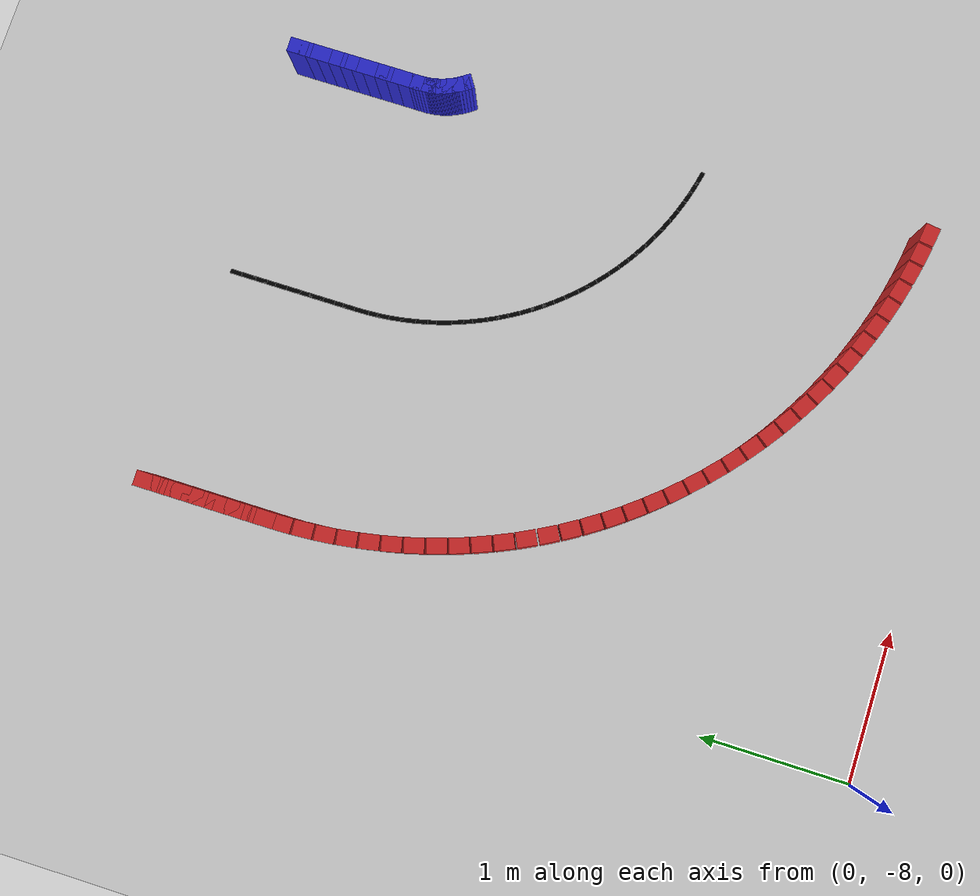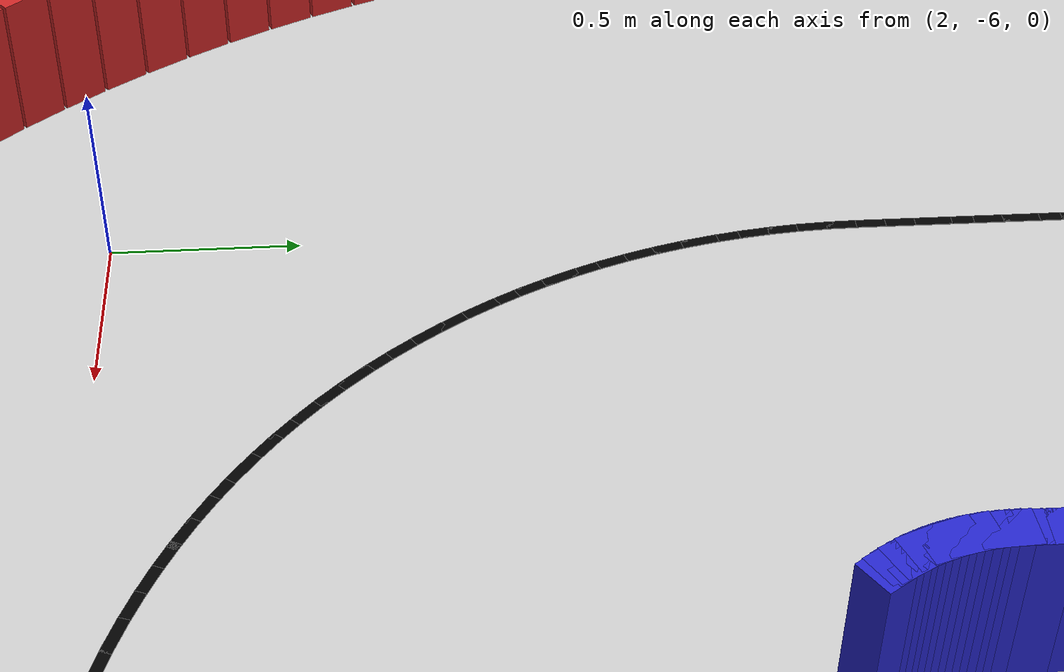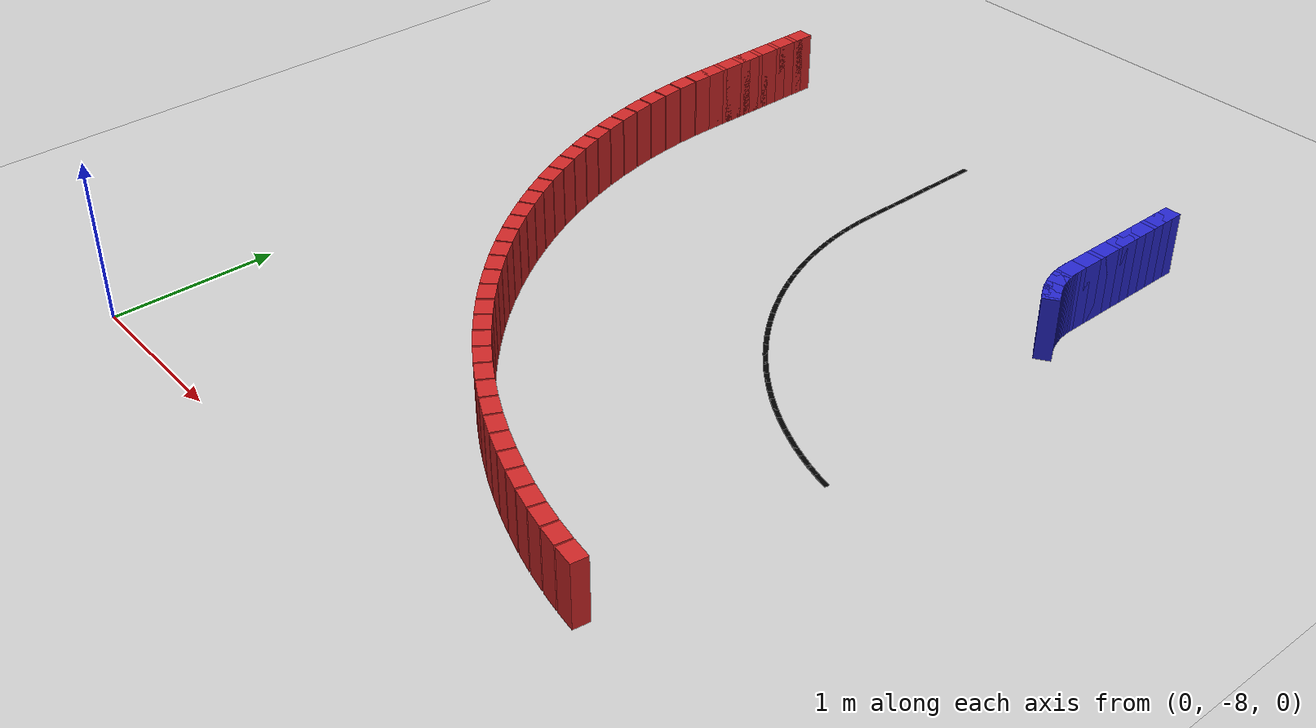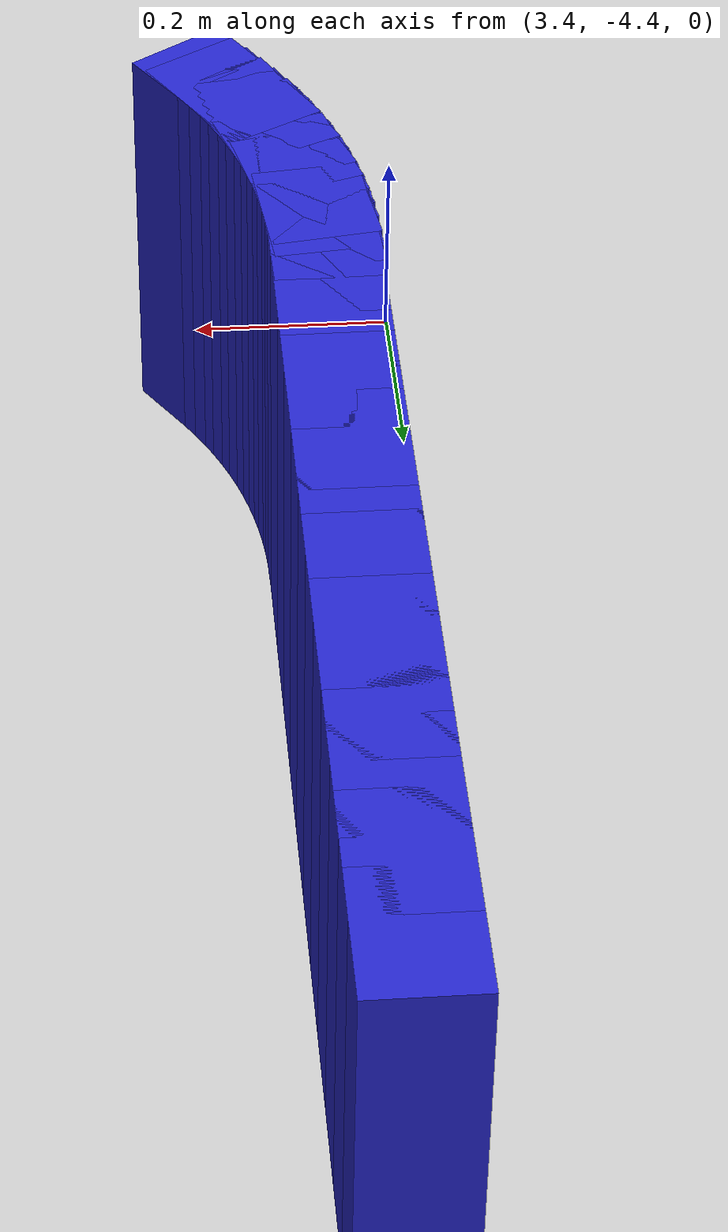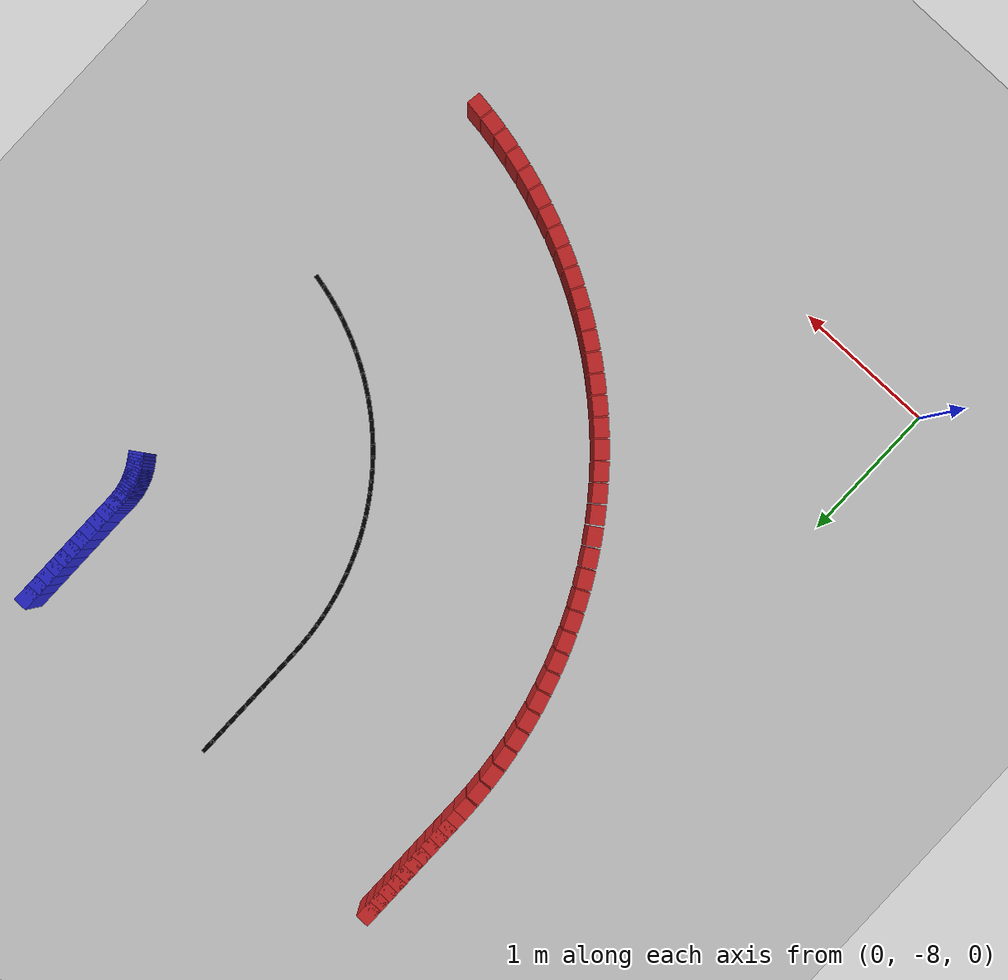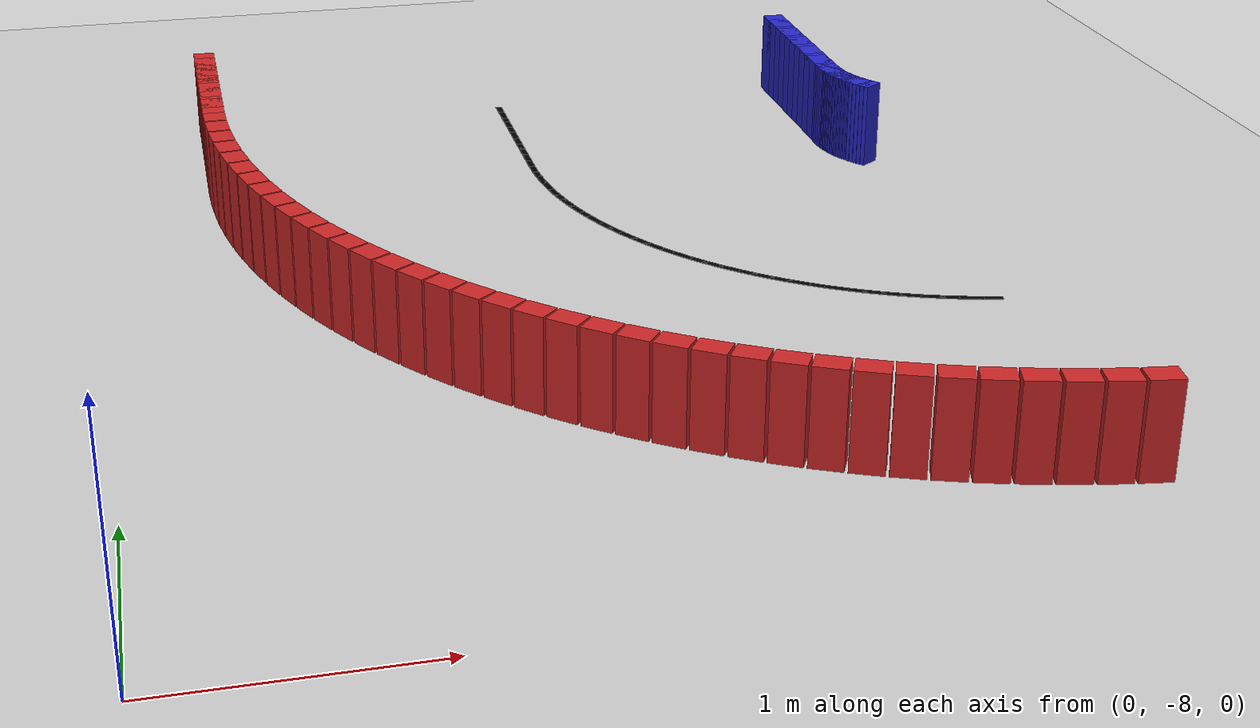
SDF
<sdf version="1.6">
 <world name="new_race_track">
  <include><uri>model://ground_plane</uri></include>
  <include><uri>model://sun</uri></include>
  <model name="iw_282">
   <static>true</static>
   <pose>3.5000 -3.1600 0.200 0 0 -1.5708</pose>
   <link name="l">
    <collision name="c"><geometry><box><size>0.1300 0.1 0.4</size></box></geometry></collision>
    <visual name="v">
     <geometry><box><size>0.1300 0.1 0.4</size></box></geometry>
     <material><ambient>0.15 0.15 0.8 1</ambient><diffuse>0.15 0.15 0.8 1</diffuse></material>
    </visual>
   </link>
  </model>
  <model name="iw_283">
   <static>true</static>
   <pose>3.5000 -3.2400 0.200 0 0 -1.5708</pose>
   <link name="l">
    <collision name="c"><geometry><box><size>0.1300 0.1 0.4</size></box></geometry></collision>
    <visual name="v">
     <geometry><box><size>0.1300 0.1 0.4</size></box></geometry>
     <material><ambient>0.15 0.15 0.8 1</ambient><diffuse>0.15 0.15 0.8 1</diffuse></material>
    </visual>
   </link>
  </model>
  <model name="iw_284">
   <static>true</static>
   <pose>3.5000 -3.3200 0.200 0 0 -1.5708</pose>
   <link name="l">
    <collision name="c"><geometry><box><size>0.1300 0.1 0.4</size></box></geometry></collision>
    <visual name="v">
     <geometry><box><size>0.1300 0.1 0.4</size></box></geometry>
     <material><ambient>0.15 0.15 0.8 1</ambient><diffuse>0.15 0.15 0.8 1</diffuse></material>
    </visual>
   </link>
  </model>
  <model name="iw_285">
   <static>true</static>
   <pose>3.5000 -3.4000 0.200 0 0 -1.5708</pose>
   <link name="l">
    <collision name="c"><geometry><box><size>0.1300 0.1 0.4</size></box></geometry></collision>
    <visual name="v">
     <geometry><box><size>0.1300 0.1 0.4</size></box></geometry>
     <material><ambient>0.15 0.15 0.8 1</ambient><diffuse>0.15 0.15 0.8 1</diffuse></material>
    </visual>
   </link>
  </model>
  <model name="iw_286">
   <static>true</static>
   <pose>3.5000 -3.4800 0.200 0 0 -1.5708</pose>
   <link name="l">
    <collision name="c"><geometry><box><size>0.1300 0.1 0.4</size></box></geometry></collision>
    <visual name="v">
     <geometry><box><size>0.1300 0.1 0.4</size></box></geometry>
     <material><ambient>0.15 0.15 0.8 1</ambient><diffuse>0.15 0.15 0.8 1</diffuse></material>
    </visual>
   </link>
  </model>
  <model name="iw_287">
   <static>true</static>
   <pose>3.5000 -3.5600 0.200 0 0 -1.5708</pose>
   <link name="l">
    <collision name="c"><geometry><box><size>0.1300 0.1 0.4</size></box></geometry></collision>
    <visual name="v">
     <geometry><box><size>0.1300 0.1 0.4</size></box></geometry>
     <material><ambient>0.15 0.15 0.8 1</ambient><diffuse>0.15 0.15 0.8 1</diffuse></material>
    </visual>
   </link>
  </model>
  <model name="iw_288">
   <static>true</static>
   <pose>3.5000 -3.6400 0.200 0 0 -1.5708</pose>
   <link name="l">
    <collision name="c"><geometry><box><size>0.1300 0.1 0.4</size></box></geometry></collision>
    <visual name="v">
     <geometry><box><size>0.1300 0.1 0.4</size></box></geometry>
     <material><ambient>0.15 0.15 0.8 1</ambient><diffuse>0.15 0.15 0.8 1</diffuse></material>
    </visual>
   </link>
  </model>
  <model name="iw_289">
   <static>true</static>
   <pose>3.5000 -3.7200 0.200 0 0 -1.5708</pose>
   <link name="l">
    <collision name="c"><geometry><box><size>0.1300 0.1 0.4</size></box></geometry></collision>
    <visual name="v">
     <geometry><box><size>0.1300 0.1 0.4</size></box></geometry>
     <material><ambient>0.15 0.15 0.8 1</ambient><diffuse>0.15 0.15 0.8 1</diffuse></material>
    </visual>
   </link>
  </model>
  <model name="iw_290">
   <static>true</static>
   <pose>3.5000 -3.8000 0.200 0 0 -1.5708</pose>
   <link name="l">
    <collision name="c"><geometry><box><size>0.1300 0.1 0.4</size></box></geometry></collision>
    <visual name="v">
     <geometry><box><size>0.1300 0.1 0.4</size></box></geometry>
     <material><ambient>0.15 0.15 0.8 1</ambient><diffuse>0.15 0.15 0.8 1</diffuse></material>
    </visual>
   </link>
  </model>
  <model name="iw_291">
   <static>true</static>
   <pose>3.5000 -3.8800 0.200 0 0 -1.5708</pose>
   <link name="l">
    <collision name="c"><geometry><box><size>0.1300 0.1 0.4</size></box></geometry></collision>
    <visual name="v">
     <geometry><box><size>0.1300 0.1 0.4</size></box></geometry>
     <material><ambient>0.15 0.15 0.8 1</ambient><diffuse>0.15 0.15 0.8 1</diffuse></material>
    </visual>
   </link>
  </model>
  <model name="iw_292">
   <static>true</static>
   <pose>3.5000 -3.9600 0.200 0 0 -1.5708</pose>
   <link name="l">
    <collision name="c"><geometry><box><size>0.1300 0.1 0.4</size></box></geometry></collision>
    <visual name="v">
     <geometry><box><size>0.1300 0.1 0.4</size></box></geometry>
     <material><ambient>0.15 0.15 0.8 1</ambient><diffuse>0.15 0.15 0.8 1</diffuse></material>
    </visual>
   </link>
  </model>
  <model name="iw_293">
   <static>true</static>
   <pose>3.5005 -4.0101 0.200 0 0 -1.5507</pose>
   <link name="l">
    <collision name="c"><geometry><box><size>0.1305 0.1 0.4</size></box></geometry></collision>
    <visual name="v">
     <geometry><box><size>0.1305 0.1 0.4</size></box></geometry>
     <material><ambient>0.15 0.15 0.8 1</ambient><diffuse>0.15 0.15 0.8 1</diffuse></material>
    </visual>
   </link>
  </model>
  <model name="iw_294">
   <static>true</static>
   <pose>3.5013 -4.0302 0.200 0 0 -1.5104</pose>
   <link name="l">
    <collision name="c"><geometry><box><size>0.1305 0.1 0.4</size></box></geometry></collision>
    <visual name="v">
     <geometry><box><size>0.1305 0.1 0.4</size></box></geometry>
     <material><ambient>0.15 0.15 0.8 1</ambient><diffuse>0.15 0.15 0.8 1</diffuse></material>
    </visual>
   </link>
  </model>
  <model name="iw_295">
   <static>true</static>
   <pose>3.5029 -4.0502 0.200 0 0 -1.4701</pose>
   <link name="l">
    <collision name="c"><geometry><box><size>0.1305 0.1 0.4</size></box></geometry></collision>
    <visual name="v">
     <geometry><box><size>0.1305 0.1 0.4</size></box></geometry>
     <material><ambient>0.15 0.15 0.8 1</ambient><diffuse>0.15 0.15 0.8 1</diffuse></material>
    </visual>
   </link>
  </model>
  <model name="iw_296">
   <static>true</static>
   <pose>3.5054 -4.0702 0.200 0 0 -1.4298</pose>
   <link name="l">
    <collision name="c"><geometry><box><size>0.1305 0.1 0.4</size></box></geometry></collision>
    <visual name="v">
     <geometry><box><size>0.1305 0.1 0.4</size></box></geometry>
     <material><ambient>0.15 0.15 0.8 1</ambient><diffuse>0.15 0.15 0.8 1</diffuse></material>
    </visual>
   </link>
  </model>
  <model name="iw_297">
   <static>true</static>
   <pose>3.5086 -4.0901 0.200 0 0 -1.3896</pose>
   <link name="l">
    <collision name="c"><geometry><box><size>0.1305 0.1 0.4</size></box></geometry></collision>
    <visual name="v">
     <geometry><box><size>0.1305 0.1 0.4</size></box></geometry>
     <material><ambient>0.15 0.15 0.8 1</ambient><diffuse>0.15 0.15 0.8 1</diffuse></material>
    </visual>
   </link>
  </model>
  <model name="iw_298">
   <static>true</static>
   <pose>3.5126 -4.1098 0.200 0 0 -1.3493</pose>
   <link name="l">
    <collision name="c"><geometry><box><size>0.1305 0.1 0.4</size></box></geometry></collision>
    <visual name="v">
     <geometry><box><size>0.1305 0.1 0.4</size></box></geometry>
     <material><ambient>0.15 0.15 0.8 1</ambient><diffuse>0.15 0.15 0.8 1</diffuse></material>
    </visual>
   </link>
  </model>
  <model name="iw_299">
   <static>true</static>
   <pose>3.5174 -4.1293 0.200 0 0 -1.3090</pose>
   <link name="l">
    <collision name="c"><geometry><box><size>0.1305 0.1 0.4</size></box></geometry></collision>
    <visual name="v">
     <geometry><box><size>0.1305 0.1 0.4</size></box></geometry>
     <material><ambient>0.15 0.15 0.8 1</ambient><diffuse>0.15 0.15 0.8 1</diffuse></material>
    </visual>
   </link>
  </model>
  <model name="iw_300">
   <static>true</static>
   <pose>3.5230 -4.1486 0.200 0 0 -1.2687</pose>
   <link name="l">
    <collision name="c"><geometry><box><size>0.1305 0.1 0.4</size></box></geometry></collision>
    <visual name="v">
     <geometry><box><size>0.1305 0.1 0.4</size></box></geometry>
     <material><ambient>0.15 0.15 0.8 1</ambient><diffuse>0.15 0.15 0.8 1</diffuse></material>
    </visual>
   </link>
  </model>
  <model name="iw_301">
   <static>true</static>
   <pose>3.5294 -4.1677 0.200 0 0 -1.2284</pose>
   <link name="l">
    <collision name="c"><geometry><box><size>0.1305 0.1 0.4</size></box></geometry></collision>
    <visual name="v">
     <geometry><box><size>0.1305 0.1 0.4</size></box></geometry>
     <material><ambient>0.15 0.15 0.8 1</ambient><diffuse>0.15 0.15 0.8 1</diffuse></material>
    </visual>
   </link>
  </model>
  <model name="iw_302">
   <static>true</static>
   <pose>3.5365 -4.1865 0.200 0 0 -1.1882</pose>
   <link name="l">
    <collision name="c"><geometry><box><size>0.1305 0.1 0.4</size></box></geometry></collision>
    <visual name="v">
     <geometry><box><size>0.1305 0.1 0.4</size></box></geometry>
     <material><ambient>0.15 0.15 0.8 1</ambient><diffuse>0.15 0.15 0.8 1</diffuse></material>
    </visual>
   </link>
  </model>
  <model name="iw_303">
   <static>true</static>
   <pose>3.5444 -4.2050 0.200 0 0 -1.1479</pose>
   <link name="l">
    <collision name="c"><geometry><box><size>0.1305 0.1 0.4</size></box></geometry></collision>
    <visual name="v">
     <geometry><box><size>0.1305 0.1 0.4</size></box></geometry>
     <material><ambient>0.15 0.15 0.8 1</ambient><diffuse>0.15 0.15 0.8 1</diffuse></material>
    </visual>
   </link>
  </model>
  <model name="iw_304">
   <static>true</static>
   <pose>3.5530 -4.2232 0.200 0 0 -1.1076</pose>
   <link name="l">
    <collision name="c"><geometry><box><size>0.1305 0.1 0.4</size></box></geometry></collision>
    <visual name="v">
     <geometry><box><size>0.1305 0.1 0.4</size></box></geometry>
     <material><ambient>0.15 0.15 0.8 1</ambient><diffuse>0.15 0.15 0.8 1</diffuse></material>
    </visual>
   </link>
  </model>
  <model name="iw_305">
   <static>true</static>
   <pose>3.5624 -4.2410 0.200 0 0 -1.0673</pose>
   <link name="l">
    <collision name="c"><geometry><box><size>0.1305 0.1 0.4</size></box></geometry></collision>
    <visual name="v">
     <geometry><box><size>0.1305 0.1 0.4</size></box></geometry>
     <material><ambient>0.15 0.15 0.8 1</ambient><diffuse>0.15 0.15 0.8 1</diffuse></material>
    </visual>
   </link>
  </model>
  <model name="iw_306">
   <static>true</static>
   <pose>3.5725 -4.2585 0.200 0 0 -1.0271</pose>
   <link name="l">
    <collision name="c"><geometry><box><size>0.1305 0.1 0.4</size></box></geometry></collision>
    <visual name="v">
     <geometry><box><size>0.1305 0.1 0.4</size></box></geometry>
     <material><ambient>0.15 0.15 0.8 1</ambient><diffuse>0.15 0.15 0.8 1</diffuse></material>
    </visual>
   </link>
  </model>
  <model name="iw_307">
   <static>true</static>
   <pose>3.5832 -4.2755 0.200 0 0 -0.9868</pose>
   <link name="l">
    <collision name="c"><geometry><box><size>0.1305 0.1 0.4</size></box></geometry></collision>
    <visual name="v">
     <geometry><box><size>0.1305 0.1 0.4</size></box></geometry>
     <material><ambient>0.15 0.15 0.8 1</ambient><diffuse>0.15 0.15 0.8 1</diffuse></material>
    </visual>
   </link>
  </model>
  <model name="ow_282">
   <static>true</static>
   <pose>0.5000 -3.1600 0.200 0 0 -1.5708</pose>
   <link name="l">
    <collision name="c"><geometry><box><size>0.1300 0.1 0.4</size></box></geometry></collision>
    <visual name="v">
     <geometry><box><size>0.1300 0.1 0.4</size></box></geometry>
     <material><ambient>0.8 0.15 0.15 1</ambient><diffuse>0.8 0.15 0.15 1</diffuse></material>
    </visual>
   </link>
  </model>
  <model name="ow_283">
   <static>true</static>
   <pose>0.5000 -3.2400 0.200 0 0 -1.5708</pose>
   <link name="l">
    <collision name="c"><geometry><box><size>0.1300 0.1 0.4</size></box></geometry></collision>
    <visual name="v">
     <geometry><box><size>0.1300 0.1 0.4</size></box></geometry>
     <material><ambient>0.8 0.15 0.15 1</ambient><diffuse>0.8 0.15 0.15 1</diffuse></material>
    </visual>
   </link>
  </model>
  <model name="ow_284">
   <static>true</static>
   <pose>0.5000 -3.3200 0.200 0 0 -1.5708</pose>
   <link name="l">
    <collision name="c"><geometry><box><size>0.1300 0.1 0.4</size></box></geometry></collision>
    <visual name="v">
     <geometry><box><size>0.1300 0.1 0.4</size></box></geometry>
     <material><ambient>0.8 0.15 0.15 1</ambient><diffuse>0.8 0.15 0.15 1</diffuse></material>
    </visual>
   </link>
  </model>
  <model name="ow_285">
   <static>true</static>
   <pose>0.5000 -3.4000 0.200 0 0 -1.5708</pose>
   <link name="l">
    <collision name="c"><geometry><box><size>0.1300 0.1 0.4</size></box></geometry></collision>
    <visual name="v">
     <geometry><box><size>0.1300 0.1 0.4</size></box></geometry>
     <material><ambient>0.8 0.15 0.15 1</ambient><diffuse>0.8 0.15 0.15 1</diffuse></material>
    </visual>
   </link>
  </model>
  <model name="ow_286">
   <static>true</static>
   <pose>0.5000 -3.4800 0.200 0 0 -1.5708</pose>
   <link name="l">
    <collision name="c"><geometry><box><size>0.1300 0.1 0.4</size></box></geometry></collision>
    <visual name="v">
     <geometry><box><size>0.1300 0.1 0.4</size></box></geometry>
     <material><ambient>0.8 0.15 0.15 1</ambient><diffuse>0.8 0.15 0.15 1</diffuse></material>
    </visual>
   </link>
  </model>
  <model name="ow_287">
   <static>true</static>
   <pose>0.5000 -3.5600 0.200 0 0 -1.5708</pose>
   <link name="l">
    <collision name="c"><geometry><box><size>0.1300 0.1 0.4</size></box></geometry></collision>
    <visual name="v">
     <geometry><box><size>0.1300 0.1 0.4</size></box></geometry>
     <material><ambient>0.8 0.15 0.15 1</ambient><diffuse>0.8 0.15 0.15 1</diffuse></material>
    </visual>
   </link>
  </model>
  <model name="ow_288">
   <static>true</static>
   <pose>0.5000 -3.6400 0.200 0 0 -1.5708</pose>
   <link name="l">
    <collision name="c"><geometry><box><size>0.1300 0.1 0.4</size></box></geometry></collision>
    <visual name="v">
     <geometry><box><size>0.1300 0.1 0.4</size></box></geometry>
     <material><ambient>0.8 0.15 0.15 1</ambient><diffuse>0.8 0.15 0.15 1</diffuse></material>
    </visual>
   </link>
  </model>
  <model name="ow_289">
   <static>true</static>
   <pose>0.5000 -3.7200 0.200 0 0 -1.5708</pose>
   <link name="l">
    <collision name="c"><geometry><box><size>0.1300 0.1 0.4</size></box></geometry></collision>
    <visual name="v">
     <geometry><box><size>0.1300 0.1 0.4</size></box></geometry>
     <material><ambient>0.8 0.15 0.15 1</ambient><diffuse>0.8 0.15 0.15 1</diffuse></material>
    </visual>
   </link>
  </model>
  <model name="ow_290">
   <static>true</static>
   <pose>0.5000 -3.8000 0.200 0 0 -1.5708</pose>
   <link name="l">
    <collision name="c"><geometry><box><size>0.1300 0.1 0.4</size></box></geometry></collision>
    <visual name="v">
     <geometry><box><size>0.1300 0.1 0.4</size></box></geometry>
     <material><ambient>0.8 0.15 0.15 1</ambient><diffuse>0.8 0.15 0.15 1</diffuse></material>
    </visual>
   </link>
  </model>
  <model name="ow_291">
   <static>true</static>
   <pose>0.5000 -3.8800 0.200 0 0 -1.5708</pose>
   <link name="l">
    <collision name="c"><geometry><box><size>0.1300 0.1 0.4</size></box></geometry></collision>
    <visual name="v">
     <geometry><box><size>0.1300 0.1 0.4</size></box></geometry>
     <material><ambient>0.8 0.15 0.15 1</ambient><diffuse>0.8 0.15 0.15 1</diffuse></material>
    </visual>
   </link>
  </model>
  <model name="ow_292">
   <static>true</static>
   <pose>0.5000 -3.9600 0.200 0 0 -1.5708</pose>
   <link name="l">
    <collision name="c"><geometry><box><size>0.1300 0.1 0.4</size></box></geometry></collision>
    <visual name="v">
     <geometry><box><size>0.1300 0.1 0.4</size></box></geometry>
     <material><ambient>0.8 0.15 0.15 1</ambient><diffuse>0.8 0.15 0.15 1</diffuse></material>
    </visual>
   </link>
  </model>
  <model name="ow_293">
   <static>true</static>
   <pose>0.5011 -4.0705 0.200 0 0 -1.5507</pose>
   <link name="l">
    <collision name="c"><geometry><box><size>0.1305 0.1 0.4</size></box></geometry></collision>
    <visual name="v">
     <geometry><box><size>0.1305 0.1 0.4</size></box></geometry>
     <material><ambient>0.8 0.15 0.15 1</ambient><diffuse>0.8 0.15 0.15 1</diffuse></material>
    </visual>
   </link>
  </model>
  <model name="ow_294">
   <static>true</static>
   <pose>0.5068 -4.2113 0.200 0 0 -1.5104</pose>
   <link name="l">
    <collision name="c"><geometry><box><size>0.1305 0.1 0.4</size></box></geometry></collision>
    <visual name="v">
     <geometry><box><size>0.1305 0.1 0.4</size></box></geometry>
     <material><ambient>0.8 0.15 0.15 1</ambient><diffuse>0.8 0.15 0.15 1</diffuse></material>
    </visual>
   </link>
  </model>
  <model name="ow_295">
   <static>true</static>
   <pose>0.5181 -4.3518 0.200 0 0 -1.4701</pose>
   <link name="l">
    <collision name="c"><geometry><box><size>0.1305 0.1 0.4</size></box></geometry></collision>
    <visual name="v">
     <geometry><box><size>0.1305 0.1 0.4</size></box></geometry>
     <material><ambient>0.8 0.15 0.15 1</ambient><diffuse>0.8 0.15 0.15 1</diffuse></material>
    </visual>
   </link>
  </model>
  <model name="ow_296">
   <static>true</static>
   <pose>0.5351 -4.4917 0.200 0 0 -1.4298</pose>
   <link name="l">
    <collision name="c"><geometry><box><size>0.1305 0.1 0.4</size></box></geometry></collision>
    <visual name="v">
     <geometry><box><size>0.1305 0.1 0.4</size></box></geometry>
     <material><ambient>0.8 0.15 0.15 1</ambient><diffuse>0.8 0.15 0.15 1</diffuse></material>
    </visual>
   </link>
  </model>
  <model name="ow_297">
   <static>true</static>
   <pose>0.5577 -4.6308 0.200 0 0 -1.3896</pose>
   <link name="l">
    <collision name="c"><geometry><box><size>0.1305 0.1 0.4</size></box></geometry></collision>
    <visual name="v">
     <geometry><box><size>0.1305 0.1 0.4</size></box></geometry>
     <material><ambient>0.8 0.15 0.15 1</ambient><diffuse>0.8 0.15 0.15 1</diffuse></material>
    </visual>
   </link>
  </model>
  <model name="ow_298">
   <static>true</static>
   <pose>0.5859 -4.7689 0.200 0 0 -1.3493</pose>
   <link name="l">
    <collision name="c"><geometry><box><size>0.1305 0.1 0.4</size></box></geometry></collision>
    <visual name="v">
     <geometry><box><size>0.1305 0.1 0.4</size></box></geometry>
     <material><ambient>0.8 0.15 0.15 1</ambient><diffuse>0.8 0.15 0.15 1</diffuse></material>
    </visual>
   </link>
  </model>
  <model name="ow_299">
   <static>true</static>
   <pose>0.6197 -4.9058 0.200 0 0 -1.3090</pose>
   <link name="l">
    <collision name="c"><geometry><box><size>0.1305 0.1 0.4</size></box></geometry></collision>
    <visual name="v">
     <geometry><box><size>0.1305 0.1 0.4</size></box></geometry>
     <material><ambient>0.8 0.15 0.15 1</ambient><diffuse>0.8 0.15 0.15 1</diffuse></material>
    </visual>
   </link>
  </model>
  <model name="ow_300">
   <static>true</static>
   <pose>0.6589 -5.0411 0.200 0 0 -1.2687</pose>
   <link name="l">
    <collision name="c"><geometry><box><size>0.1305 0.1 0.4</size></box></geometry></collision>
    <visual name="v">
     <geometry><box><size>0.1305 0.1 0.4</size></box></geometry>
     <material><ambient>0.8 0.15 0.15 1</ambient><diffuse>0.8 0.15 0.15 1</diffuse></material>
    </visual>
   </link>
  </model>
  <model name="ow_301">
   <static>true</static>
   <pose>0.7035 -5.1748 0.200 0 0 -1.2284</pose>
   <link name="l">
    <collision name="c"><geometry><box><size>0.1305 0.1 0.4</size></box></geometry></collision>
    <visual name="v">
     <geometry><box><size>0.1305 0.1 0.4</size></box></geometry>
     <material><ambient>0.8 0.15 0.15 1</ambient><diffuse>0.8 0.15 0.15 1</diffuse></material>
    </visual>
   </link>
  </model>
  <model name="ow_302">
   <static>true</static>
   <pose>0.7535 -5.3066 0.200 0 0 -1.1882</pose>
   <link name="l">
    <collision name="c"><geometry><box><size>0.1305 0.1 0.4</size></box></geometry></collision>
    <visual name="v">
     <geometry><box><size>0.1305 0.1 0.4</size></box></geometry>
     <material><ambient>0.8 0.15 0.15 1</ambient><diffuse>0.8 0.15 0.15 1</diffuse></material>
    </visual>
   </link>
  </model>
  <model name="ow_303">
   <static>true</static>
   <pose>0.8087 -5.4363 0.200 0 0 -1.1479</pose>
   <link name="l">
    <collision name="c"><geometry><box><size>0.1305 0.1 0.4</size></box></geometry></collision>
    <visual name="v">
     <geometry><box><size>0.1305 0.1 0.4</size></box></geometry>
     <material><ambient>0.8 0.15 0.15 1</ambient><diffuse>0.8 0.15 0.15 1</diffuse></material>
    </visual>
   </link>
  </model>
  <model name="ow_304">
   <static>true</static>
   <pose>0.8691 -5.5636 0.200 0 0 -1.1076</pose>
   <link name="l">
    <collision name="c"><geometry><box><size>0.1305 0.1 0.4</size></box></geometry></collision>
    <visual name="v">
     <geometry><box><size>0.1305 0.1 0.4</size></box></geometry>
     <material><ambient>0.8 0.15 0.15 1</ambient><diffuse>0.8 0.15 0.15 1</diffuse></material>
    </visual>
   </link>
  </model>
  <model name="ow_305">
   <static>true</static>
   <pose>0.9346 -5.6884 0.200 0 0 -1.0673</pose>
   <link name="l">
    <collision name="c"><geometry><box><size>0.1305 0.1 0.4</size></box></geometry></collision>
    <visual name="v">
     <geometry><box><size>0.1305 0.1 0.4</size></box></geometry>
     <material><ambient>0.8 0.15 0.15 1</ambient><diffuse>0.8 0.15 0.15 1</diffuse></material>
    </visual>
   </link>
  </model>
  <model name="ow_306">
   <static>true</static>
   <pose>1.0051 -5.8105 0.200 0 0 -1.0271</pose>
   <link name="l">
    <collision name="c"><geometry><box><size>0.1305 0.1 0.4</size></box></geometry></collision>
    <visual name="v">
     <geometry><box><size>0.1305 0.1 0.4</size></box></geometry>
     <material><ambient>0.8 0.15 0.15 1</ambient><diffuse>0.8 0.15 0.15 1</diffuse></material>
    </visual>
   </link>
  </model>
  <model name="ow_307">
   <static>true</static>
   <pose>1.0804 -5.9296 0.200 0 0 -0.9868</pose>
   <link name="l">
    <collision name="c"><geometry><box><size>0.1305 0.1 0.4</size></box></geometry></collision>
    <visual name="v">
     <geometry><box><size>0.1305 0.1 0.4</size></box></geometry>
     <material><ambient>0.8 0.15 0.15 1</ambient><diffuse>0.8 0.15 0.15 1</diffuse></material>
    </visual>
   </link>
  </model>
  <model name="ow_308">
   <static>true</static>
   <pose>1.1605 -6.0456 0.200 0 0 -0.9465</pose>
   <link name="l">
    <collision name="c"><geometry><box><size>0.1305 0.1 0.4</size></box></geometry></collision>
    <visual name="v">
     <geometry><box><size>0.1305 0.1 0.4</size></box></geometry>
     <material><ambient>0.8 0.15 0.15 1</ambient><diffuse>0.8 0.15 0.15 1</diffuse></material>
    </visual>
   </link>
  </model>
  <model name="ow_309">
   <static>true</static>
   <pose>1.2452 -6.1583 0.200 0 0 -0.9062</pose>
   <link name="l">
    <collision name="c"><geometry><box><size>0.1305 0.1 0.4</size></box></geometry></collision>
    <visual name="v">
     <geometry><box><size>0.1305 0.1 0.4</size></box></geometry>
     <material><ambient>0.8 0.15 0.15 1</ambient><diffuse>0.8 0.15 0.15 1</diffuse></material>
    </visual>
   </link>
  </model>
  <model name="ow_310">
   <static>true</static>
   <pose>1.3343 -6.2674 0.200 0 0 -0.8660</pose>
   <link name="l">
    <collision name="c"><geometry><box><size>0.1305 0.1 0.4</size></box></geometry></collision>
    <visual name="v">
     <geometry><box><size>0.1305 0.1 0.4</size></box></geometry>
     <material><ambient>0.8 0.15 0.15 1</ambient><diffuse>0.8 0.15 0.15 1</diffuse></material>
    </visual>
   </link>
  </model>
  <model name="ow_311">
   <static>true</static>
   <pose>1.4278 -6.3729 0.200 0 0 -0.8257</pose>
   <link name="l">
    <collision name="c"><geometry><box><size>0.1305 0.1 0.4</size></box></geometry></collision>
    <visual name="v">
     <geometry><box><size>0.1305 0.1 0.4</size></box></geometry>
     <material><ambient>0.8 0.15 0.15 1</ambient><diffuse>0.8 0.15 0.15 1</diffuse></material>
    </visual>
   </link>
  </model>
  <model name="ow_312">
   <static>true</static>
   <pose>1.5254 -6.4746 0.200 0 0 -0.7854</pose>
   <link name="l">
    <collision name="c"><geometry><box><size>0.1305 0.1 0.4</size></box></geometry></collision>
    <visual name="v">
     <geometry><box><size>0.1305 0.1 0.4</size></box></geometry>
     <material><ambient>0.8 0.15 0.15 1</ambient><diffuse>0.8 0.15 0.15 1</diffuse></material>
    </visual>
   </link>
  </model>
  <model name="ow_313">
   <static>true</static>
   <pose>1.6271 -6.5722 0.200 0 0 -0.7451</pose>
   <link name="l">
    <collision name="c"><geometry><box><size>0.1305 0.1 0.4</size></box></geometry></collision>
    <visual name="v">
     <geometry><box><size>0.1305 0.1 0.4</size></box></geometry>
     <material><ambient>0.8 0.15 0.15 1</ambient><diffuse>0.8 0.15 0.15 1</diffuse></material>
    </visual>
   </link>
  </model>
  <model name="ow_314">
   <static>true</static>
   <pose>1.7326 -6.6657 0.200 0 0 -0.7048</pose>
   <link name="l">
    <collision name="c"><geometry><box><size>0.1305 0.1 0.4</size></box></geometry></collision>
    <visual name="v">
     <geometry><box><size>0.1305 0.1 0.4</size></box></geometry>
     <material><ambient>0.8 0.15 0.15 1</ambient><diffuse>0.8 0.15 0.15 1</diffuse></material>
    </visual>
   </link>
  </model>
  <model name="ow_315">
   <static>true</static>
   <pose>1.8417 -6.7548 0.200 0 0 -0.6646</pose>
   <link name="l">
    <collision name="c"><geometry><box><size>0.1305 0.1 0.4</size></box></geometry></collision>
    <visual name="v">
     <geometry><box><size>0.1305 0.1 0.4</size></box></geometry>
     <material><ambient>0.8 0.15 0.15 1</ambient><diffuse>0.8 0.15 0.15 1</diffuse></material>
    </visual>
   </link>
  </model>
  <model name="ow_316">
   <static>true</static>
   <pose>1.9544 -6.8395 0.200 0 0 -0.6243</pose>
   <link name="l">
    <collision name="c"><geometry><box><size>0.1305 0.1 0.4</size></box></geometry></collision>
    <visual name="v">
     <geometry><box><size>0.1305 0.1 0.4</size></box></geometry>
     <material><ambient>0.8 0.15 0.15 1</ambient><diffuse>0.8 0.15 0.15 1</diffuse></material>
    </visual>
   </link>
  </model>
  <model name="ow_317">
   <static>true</static>
   <pose>2.0704 -6.9196 0.200 0 0 -0.5840</pose>
   <link name="l">
    <collision name="c"><geometry><box><size>0.1305 0.1 0.4</size></box></geometry></collision>
    <visual name="v">
     <geometry><box><size>0.1305 0.1 0.4</size></box></geometry>
     <material><ambient>0.8 0.15 0.15 1</ambient><diffuse>0.8 0.15 0.15 1</diffuse></material>
    </visual>
   </link>
  </model>
  <model name="ow_318">
   <static>true</static>
   <pose>2.1895 -6.9949 0.200 0 0 -0.5437</pose>
   <link name="l">
    <collision name="c"><geometry><box><size>0.1305 0.1 0.4</size></box></geometry></collision>
    <visual name="v">
     <geometry><box><size>0.1305 0.1 0.4</size></box></geometry>
     <material><ambient>0.8 0.15 0.15 1</ambient><diffuse>0.8 0.15 0.15 1</diffuse></material>
    </visual>
   </link>
  </model>
  <model name="ow_319">
   <static>true</static>
   <pose>2.3116 -7.0654 0.200 0 0 -0.5035</pose>
   <link name="l">
    <collision name="c"><geometry><box><size>0.1305 0.1 0.4</size></box></geometry></collision>
    <visual name="v">
     <geometry><box><size>0.1305 0.1 0.4</size></box></geometry>
     <material><ambient>0.8 0.15 0.15 1</ambient><diffuse>0.8 0.15 0.15 1</diffuse></material>
    </visual>
   </link>
  </model>
  <model name="ow_320">
   <static>true</static>
   <pose>2.4364 -7.1309 0.200 0 0 -0.4632</pose>
   <link name="l">
    <collision name="c"><geometry><box><size>0.1305 0.1 0.4</size></box></geometry></collision>
    <visual name="v">
     <geometry><box><size>0.1305 0.1 0.4</size></box></geometry>
     <material><ambient>0.8 0.15 0.15 1</ambient><diffuse>0.8 0.15 0.15 1</diffuse></material>
    </visual>
   </link>
  </model>
  <model name="ow_321">
   <static>true</static>
   <pose>2.5637 -7.1913 0.200 0 0 -0.4229</pose>
   <link name="l">
    <collision name="c"><geometry><box><size>0.1305 0.1 0.4</size></box></geometry></collision>
    <visual name="v">
     <geometry><box><size>0.1305 0.1 0.4</size></box></geometry>
     <material><ambient>0.8 0.15 0.15 1</ambient><diffuse>0.8 0.15 0.15 1</diffuse></material>
    </visual>
   </link>
  </model>
  <model name="ow_322">
   <static>true</static>
   <pose>2.6934 -7.2465 0.200 0 0 -0.3826</pose>
   <link name="l">
    <collision name="c"><geometry><box><size>0.1305 0.1 0.4</size></box></geometry></collision>
    <visual name="v">
     <geometry><box><size>0.1305 0.1 0.4</size></box></geometry>
     <material><ambient>0.8 0.15 0.15 1</ambient><diffuse>0.8 0.15 0.15 1</diffuse></material>
    </visual>
   </link>
  </model>
  <model name="ow_323">
   <static>true</static>
   <pose>2.8252 -7.2965 0.200 0 0 -0.3424</pose>
   <link name="l">
    <collision name="c"><geometry><box><size>0.1305 0.1 0.4</size></box></geometry></collision>
    <visual name="v">
     <geometry><box><size>0.1305 0.1 0.4</size></box></geometry>
     <material><ambient>0.8 0.15 0.15 1</ambient><diffuse>0.8 0.15 0.15 1</diffuse></material>
    </visual>
   </link>
  </model>
  <model name="ow_324">
   <static>true</static>
   <pose>2.9589 -7.3411 0.200 0 0 -0.3021</pose>
   <link name="l">
    <collision name="c"><geometry><box><size>0.1305 0.1 0.4</size></box></geometry></collision>
    <visual name="v">
     <geometry><box><size>0.1305 0.1 0.4</size></box></geometry>
     <material><ambient>0.8 0.15 0.15 1</ambient><diffuse>0.8 0.15 0.15 1</diffuse></material>
    </visual>
   </link>
  </model>
  <model name="ow_325">
   <static>true</static>
   <pose>3.0942 -7.3803 0.200 0 0 -0.2618</pose>
   <link name="l">
    <collision name="c"><geometry><box><size>0.1305 0.1 0.4</size></box></geometry></collision>
    <visual name="v">
     <geometry><box><size>0.1305 0.1 0.4</size></box></geometry>
     <material><ambient>0.8 0.15 0.15 1</ambient><diffuse>0.8 0.15 0.15 1</diffuse></material>
    </visual>
   </link>
  </model>
  <model name="ow_326">
   <static>true</static>
   <pose>3.2311 -7.4141 0.200 0 0 -0.2215</pose>
   <link name="l">
    <collision name="c"><geometry><box><size>0.1305 0.1 0.4</size></box></geometry></collision>
    <visual name="v">
     <geometry><box><size>0.1305 0.1 0.4</size></box></geometry>
     <material><ambient>0.8 0.15 0.15 1</ambient><diffuse>0.8 0.15 0.15 1</diffuse></material>
    </visual>
   </link>
  </model>
  <model name="ow_327">
   <static>true</static>
   <pose>3.3692 -7.4423 0.200 0 0 -0.1812</pose>
   <link name="l">
    <collision name="c"><geometry><box><size>0.1305 0.1 0.4</size></box></geometry></collision>
    <visual name="v">
     <geometry><box><size>0.1305 0.1 0.4</size></box></geometry>
     <material><ambient>0.8 0.15 0.15 1</ambient><diffuse>0.8 0.15 0.15 1</diffuse></material>
    </visual>
   </link>
  </model>
  <model name="ow_328">
   <static>true</static>
   <pose>3.5083 -7.4649 0.200 0 0 -0.1410</pose>
   <link name="l">
    <collision name="c"><geometry><box><size>0.1305 0.1 0.4</size></box></geometry></collision>
    <visual name="v">
     <geometry><box><size>0.1305 0.1 0.4</size></box></geometry>
     <material><ambient>0.8 0.15 0.15 1</ambient><diffuse>0.8 0.15 0.15 1</diffuse></material>
    </visual>
   </link>
  </model>
  <model name="line_282">
   <static>true</static>
   <pose>2.0000 -3.1600 0.002 0 0 -1.5708</pose>
   <link name="l">
    <visual name="v">
     <geometry><box><size>0.1000 0.03 0.002</size></box></geometry>
     <material><ambient>0 0 0 1</ambient><diffuse>0 0 0 1</diffuse></material>
    </visual>
   </link>
  </model>
  <model name="line_283">
   <static>true</static>
   <pose>2.0000 -3.2400 0.002 0 0 -1.5708</pose>
   <link name="l">
    <visual name="v">
     <geometry><box><size>0.1000 0.03 0.002</size></box></geometry>
     <material><ambient>0 0 0 1</ambient><diffuse>0 0 0 1</diffuse></material>
    </visual>
   </link>
  </model>
  <model name="line_284">
   <static>true</static>
   <pose>2.0000 -3.3200 0.002 0 0 -1.5708</pose>
   <link name="l">
    <visual name="v">
     <geometry><box><size>0.1000 0.03 0.002</size></box></geometry>
     <material><ambient>0 0 0 1</ambient><diffuse>0 0 0 1</diffuse></material>
    </visual>
   </link>
  </model>
  <model name="line_285">
   <static>true</static>
   <pose>2.0000 -3.4000 0.002 0 0 -1.5708</pose>
   <link name="l">
    <visual name="v">
     <geometry><box><size>0.1000 0.03 0.002</size></box></geometry>
     <material><ambient>0 0 0 1</ambient><diffuse>0 0 0 1</diffuse></material>
    </visual>
   </link>
  </model>
  <model name="line_286">
   <static>true</static>
   <pose>2.0000 -3.4800 0.002 0 0 -1.5708</pose>
   <link name="l">
    <visual name="v">
     <geometry><box><size>0.1000 0.03 0.002</size></box></geometry>
     <material><ambient>0 0 0 1</ambient><diffuse>0 0 0 1</diffuse></material>
    </visual>
   </link>
  </model>
  <model name="line_287">
   <static>true</static>
   <pose>2.0000 -3.5600 0.002 0 0 -1.5708</pose>
   <link name="l">
    <visual name="v">
     <geometry><box><size>0.1000 0.03 0.002</size></box></geometry>
     <material><ambient>0 0 0 1</ambient><diffuse>0 0 0 1</diffuse></material>
    </visual>
   </link>
  </model>
  <model name="line_288">
   <static>true</static>
   <pose>2.0000 -3.6400 0.002 0 0 -1.5708</pose>
   <link name="l">
    <visual name="v">
     <geometry><box><size>0.1000 0.03 0.002</size></box></geometry>
     <material><ambient>0 0 0 1</ambient><diffuse>0 0 0 1</diffuse></material>
    </visual>
   </link>
  </model>
  <model name="line_289">
   <static>true</static>
   <pose>2.0000 -3.7200 0.002 0 0 -1.5708</pose>
   <link name="l">
    <visual name="v">
     <geometry><box><size>0.1000 0.03 0.002</size></box></geometry>
     <material><ambient>0 0 0 1</ambient><diffuse>0 0 0 1</diffuse></material>
    </visual>
   </link>
  </model>
  <model name="line_290">
   <static>true</static>
   <pose>2.0000 -3.8000 0.002 0 0 -1.5708</pose>
   <link name="l">
    <visual name="v">
     <geometry><box><size>0.1000 0.03 0.002</size></box></geometry>
     <material><ambient>0 0 0 1</ambient><diffuse>0 0 0 1</diffuse></material>
    </visual>
   </link>
  </model>
  <model name="line_291">
   <static>true</static>
   <pose>2.0000 -3.8800 0.002 0 0 -1.5708</pose>
   <link name="l">
    <visual name="v">
     <geometry><box><size>0.1000 0.03 0.002</size></box></geometry>
     <material><ambient>0 0 0 1</ambient><diffuse>0 0 0 1</diffuse></material>
    </visual>
   </link>
  </model>
  <model name="line_292">
   <static>true</static>
   <pose>2.0000 -3.9600 0.002 0 0 -1.5708</pose>
   <link name="l">
    <visual name="v">
     <geometry><box><size>0.1000 0.03 0.002</size></box></geometry>
     <material><ambient>0 0 0 1</ambient><diffuse>0 0 0 1</diffuse></material>
    </visual>
   </link>
  </model>
  <model name="line_293">
   <static>true</static>
   <pose>2.0008 -4.0403 0.002 0 0 -1.5507</pose>
   <link name="l">
    <visual name="v">
     <geometry><box><size>0.1005 0.03 0.002</size></box></geometry>
     <material><ambient>0 0 0 1</ambient><diffuse>0 0 0 1</diffuse></material>
    </visual>
   </link>
  </model>
  <model name="line_294">
   <static>true</static>
   <pose>2.0041 -4.1207 0.002 0 0 -1.5104</pose>
   <link name="l">
    <visual name="v">
     <geometry><box><size>0.1005 0.03 0.002</size></box></geometry>
     <material><ambient>0 0 0 1</ambient><diffuse>0 0 0 1</diffuse></material>
    </visual>
   </link>
  </model>
  <model name="line_295">
   <static>true</static>
   <pose>2.0105 -4.2010 0.002 0 0 -1.4701</pose>
   <link name="l">
    <visual name="v">
     <geometry><box><size>0.1005 0.03 0.002</size></box></geometry>
     <material><ambient>0 0 0 1</ambient><diffuse>0 0 0 1</diffuse></material>
    </visual>
   </link>
  </model>
  <model name="line_296">
   <static>true</static>
   <pose>2.0202 -4.2809 0.002 0 0 -1.4298</pose>
   <link name="l">
    <visual name="v">
     <geometry><box><size>0.1005 0.03 0.002</size></box></geometry>
     <material><ambient>0 0 0 1</ambient><diffuse>0 0 0 1</diffuse></material>
    </visual>
   </link>
  </model>
  <model name="line_297">
   <static>true</static>
   <pose>2.0332 -4.3604 0.002 0 0 -1.3896</pose>
   <link name="l">
    <visual name="v">
     <geometry><box><size>0.1005 0.03 0.002</size></box></geometry>
     <material><ambient>0 0 0 1</ambient><diffuse>0 0 0 1</diffuse></material>
    </visual>
   </link>
  </model>
  <model name="line_298">
   <static>true</static>
   <pose>2.0493 -4.4393 0.002 0 0 -1.3493</pose>
   <link name="l">
    <visual name="v">
     <geometry><box><size>0.1005 0.03 0.002</size></box></geometry>
     <material><ambient>0 0 0 1</ambient><diffuse>0 0 0 1</diffuse></material>
    </visual>
   </link>
  </model>
  <model name="line_299">
   <static>true</static>
   <pose>2.0685 -4.5175 0.002 0 0 -1.3090</pose>
   <link name="l">
    <visual name="v">
     <geometry><box><size>0.1005 0.03 0.002</size></box></geometry>
     <material><ambient>0 0 0 1</ambient><diffuse>0 0 0 1</diffuse></material>
    </visual>
   </link>
  </model>
  <model name="line_300">
   <static>true</static>
   <pose>2.0909 -4.5949 0.002 0 0 -1.2687</pose>
   <link name="l">
    <visual name="v">
     <geometry><box><size>0.1005 0.03 0.002</size></box></geometry>
     <material><ambient>0 0 0 1</ambient><diffuse>0 0 0 1</diffuse></material>
    </visual>
   </link>
  </model>
  <model name="line_301">
   <static>true</static>
   <pose>2.1164 -4.6713 0.002 0 0 -1.2284</pose>
   <link name="l">
    <visual name="v">
     <geometry><box><size>0.1005 0.03 0.002</size></box></geometry>
     <material><ambient>0 0 0 1</ambient><diffuse>0 0 0 1</diffuse></material>
    </visual>
   </link>
  </model>
  <model name="line_302">
   <static>true</static>
   <pose>2.1450 -4.7466 0.002 0 0 -1.1882</pose>
   <link name="l">
    <visual name="v">
     <geometry><box><size>0.1005 0.03 0.002</size></box></geometry>
     <material><ambient>0 0 0 1</ambient><diffuse>0 0 0 1</diffuse></material>
    </visual>
   </link>
  </model>
  <model name="line_303">
   <static>true</static>
   <pose>2.1766 -4.8207 0.002 0 0 -1.1479</pose>
   <link name="l">
    <visual name="v">
     <geometry><box><size>0.1005 0.03 0.002</size></box></geometry>
     <material><ambient>0 0 0 1</ambient><diffuse>0 0 0 1</diffuse></material>
    </visual>
   </link>
  </model>
  <model name="line_304">
   <static>true</static>
   <pose>2.2111 -4.8934 0.002 0 0 -1.1076</pose>
   <link name="l">
    <visual name="v">
     <geometry><box><size>0.1005 0.03 0.002</size></box></geometry>
     <material><ambient>0 0 0 1</ambient><diffuse>0 0 0 1</diffuse></material>
    </visual>
   </link>
  </model>
  <model name="line_305">
   <static>true</static>
   <pose>2.2485 -4.9647 0.002 0 0 -1.0673</pose>
   <link name="l">
    <visual name="v">
     <geometry><box><size>0.1005 0.03 0.002</size></box></geometry>
     <material><ambient>0 0 0 1</ambient><diffuse>0 0 0 1</diffuse></material>
    </visual>
   </link>
  </model>
  <model name="line_306">
   <static>true</static>
   <pose>2.2888 -5.0345 0.002 0 0 -1.0271</pose>
   <link name="l">
    <visual name="v">
     <geometry><box><size>0.1005 0.03 0.002</size></box></geometry>
     <material><ambient>0 0 0 1</ambient><diffuse>0 0 0 1</diffuse></material>
    </visual>
   </link>
  </model>
  <model name="line_307">
   <static>true</static>
   <pose>2.3318 -5.1025 0.002 0 0 -0.9868</pose>
   <link name="l">
    <visual name="v">
     <geometry><box><size>0.1005 0.03 0.002</size></box></geometry>
     <material><ambient>0 0 0 1</ambient><diffuse>0 0 0 1</diffuse></material>
    </visual>
   </link>
  </model>
  <model name="line_308">
   <static>true</static>
   <pose>2.3776 -5.1688 0.002 0 0 -0.9465</pose>
   <link name="l">
    <visual name="v">
     <geometry><box><size>0.1005 0.03 0.002</size></box></geometry>
     <material><ambient>0 0 0 1</ambient><diffuse>0 0 0 1</diffuse></material>
    </visual>
   </link>
  </model>
  <model name="line_309">
   <static>true</static>
   <pose>2.4260 -5.2332 0.002 0 0 -0.9062</pose>
   <link name="l">
    <visual name="v">
     <geometry><box><size>0.1005 0.03 0.002</size></box></geometry>
     <material><ambient>0 0 0 1</ambient><diffuse>0 0 0 1</diffuse></material>
    </visual>
   </link>
  </model>
  <model name="line_310">
   <static>true</static>
   <pose>2.4769 -5.2956 0.002 0 0 -0.8660</pose>
   <link name="l">
    <visual name="v">
     <geometry><box><size>0.1005 0.03 0.002</size></box></geometry>
     <material><ambient>0 0 0 1</ambient><diffuse>0 0 0 1</diffuse></material>
    </visual>
   </link>
  </model>
  <model name="line_311">
   <static>true</static>
   <pose>2.5303 -5.3558 0.002 0 0 -0.8257</pose>
   <link name="l">
    <visual name="v">
     <geometry><box><size>0.1005 0.03 0.002</size></box></geometry>
     <material><ambient>0 0 0 1</ambient><diffuse>0 0 0 1</diffuse></material>
    </visual>
   </link>
  </model>
  <model name="line_312">
   <static>true</static>
   <pose>2.5861 -5.4139 0.002 0 0 -0.7854</pose>
   <link name="l">
    <visual name="v">
     <geometry><box><size>0.1005 0.03 0.002</size></box></geometry>
     <material><ambient>0 0 0 1</ambient><diffuse>0 0 0 1</diffuse></material>
    </visual>
   </link>
  </model>
  <model name="line_313">
   <static>true</static>
   <pose>2.6442 -5.4697 0.002 0 0 -0.7451</pose>
   <link name="l">
    <visual name="v">
     <geometry><box><size>0.1005 0.03 0.002</size></box></geometry>
     <material><ambient>0 0 0 1</ambient><diffuse>0 0 0 1</diffuse></material>
    </visual>
   </link>
  </model>
  <model name="line_314">
   <static>true</static>
   <pose>2.7044 -5.5231 0.002 0 0 -0.7048</pose>
   <link name="l">
    <visual name="v">
     <geometry><box><size>0.1005 0.03 0.002</size></box></geometry>
     <material><ambient>0 0 0 1</ambient><diffuse>0 0 0 1</diffuse></material>
    </visual>
   </link>
  </model>
  <model name="line_315">
   <static>true</static>
   <pose>2.7668 -5.5740 0.002 0 0 -0.6646</pose>
   <link name="l">
    <visual name="v">
     <geometry><box><size>0.1005 0.03 0.002</size></box></geometry>
     <material><ambient>0 0 0 1</ambient><diffuse>0 0 0 1</diffuse></material>
    </visual>
   </link>
  </model>
  <model name="line_316">
   <static>true</static>
   <pose>2.8312 -5.6224 0.002 0 0 -0.6243</pose>
   <link name="l">
    <visual name="v">
     <geometry><box><size>0.1005 0.03 0.002</size></box></geometry>
     <material><ambient>0 0 0 1</ambient><diffuse>0 0 0 1</diffuse></material>
    </visual>
   </link>
  </model>
  <model name="line_317">
   <static>true</static>
   <pose>2.8975 -5.6682 0.002 0 0 -0.5840</pose>
   <link name="l">
    <visual name="v">
     <geometry><box><size>0.1005 0.03 0.002</size></box></geometry>
     <material><ambient>0 0 0 1</ambient><diffuse>0 0 0 1</diffuse></material>
    </visual>
   </link>
  </model>
  <model name="line_318">
   <static>true</static>
   <pose>2.9655 -5.7112 0.002 0 0 -0.5437</pose>
   <link name="l">
    <visual name="v">
     <geometry><box><size>0.1005 0.03 0.002</size></box></geometry>
     <material><ambient>0 0 0 1</ambient><diffuse>0 0 0 1</diffuse></material>
    </visual>
   </link>
  </model>
  <model name="line_319">
   <static>true</static>
   <pose>3.0353 -5.7515 0.002 0 0 -0.5035</pose>
   <link name="l">
    <visual name="v">
     <geometry><box><size>0.1005 0.03 0.002</size></box></geometry>
     <material><ambient>0 0 0 1</ambient><diffuse>0 0 0 1</diffuse></material>
    </visual>
   </link>
  </model>
  <model name="line_320">
   <static>true</static>
   <pose>3.1066 -5.7889 0.002 0 0 -0.4632</pose>
   <link name="l">
    <visual name="v">
     <geometry><box><size>0.1005 0.03 0.002</size></box></geometry>
     <material><ambient>0 0 0 1</ambient><diffuse>0 0 0 1</diffuse></material>
    </visual>
   </link>
  </model>
  <model name="line_321">
   <static>true</static>
   <pose>3.1793 -5.8234 0.002 0 0 -0.4229</pose>
   <link name="l">
    <visual name="v">
     <geometry><box><size>0.1005 0.03 0.002</size></box></geometry>
     <material><ambient>0 0 0 1</ambient><diffuse>0 0 0 1</diffuse></material>
    </visual>
   </link>
  </model>
  <model name="line_322">
   <static>true</static>
   <pose>3.2534 -5.8550 0.002 0 0 -0.3826</pose>
   <link name="l">
    <visual name="v">
     <geometry><box><size>0.1005 0.03 0.002</size></box></geometry>
     <material><ambient>0 0 0 1</ambient><diffuse>0 0 0 1</diffuse></material>
    </visual>
   </link>
  </model>
  <model name="line_323">
   <static>true</static>
   <pose>3.3287 -5.8836 0.002 0 0 -0.3424</pose>
   <link name="l">
    <visual name="v">
     <geometry><box><size>0.1005 0.03 0.002</size></box></geometry>
     <material><ambient>0 0 0 1</ambient><diffuse>0 0 0 1</diffuse></material>
    </visual>
   </link>
  </model>
  <model name="line_324">
   <static>true</static>
   <pose>3.4051 -5.9091 0.002 0 0 -0.3021</pose>
   <link name="l">
    <visual name="v">
     <geometry><box><size>0.1005 0.03 0.002</size></box></geometry>
     <material><ambient>0 0 0 1</ambient><diffuse>0 0 0 1</diffuse></material>
    </visual>
   </link>
  </model>
  <model name="line_325">
   <static>true</static>
   <pose>3.4825 -5.9315 0.002 0 0 -0.2618</pose>
   <link name="l">
    <visual name="v">
     <geometry><box><size>0.1005 0.03 0.002</size></box></geometry>
     <material><ambient>0 0 0 1</ambient><diffuse>0 0 0 1</diffuse></material>
    </visual>
   </link>
  </model>
  <model name="line_326">
   <static>true</static>
   <pose>3.5607 -5.9507 0.002 0 0 -0.2215</pose>
   <link name="l">
    <visual name="v">
     <geometry><box><size>0.1005 0.03 0.002</size></box></geometry>
     <material><ambient>0 0 0 1</ambient><diffuse>0 0 0 1</diffuse></material>
    </visual>
   </link>
  </model>
 </world>
</sdf>
